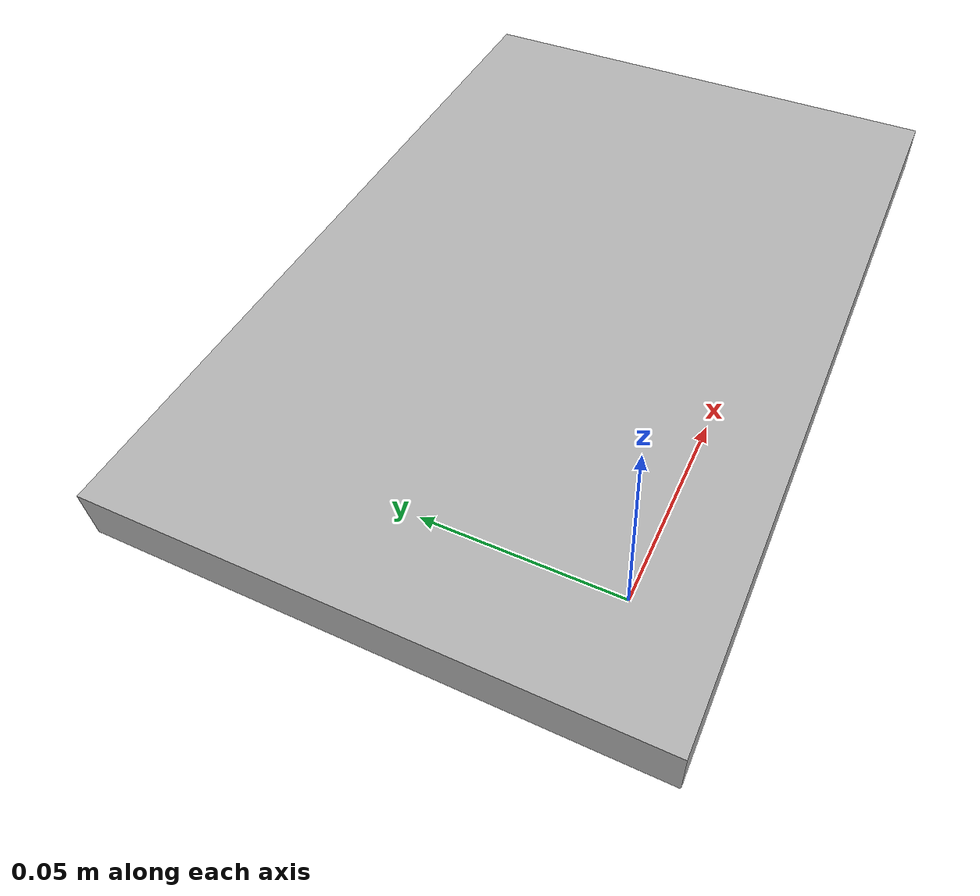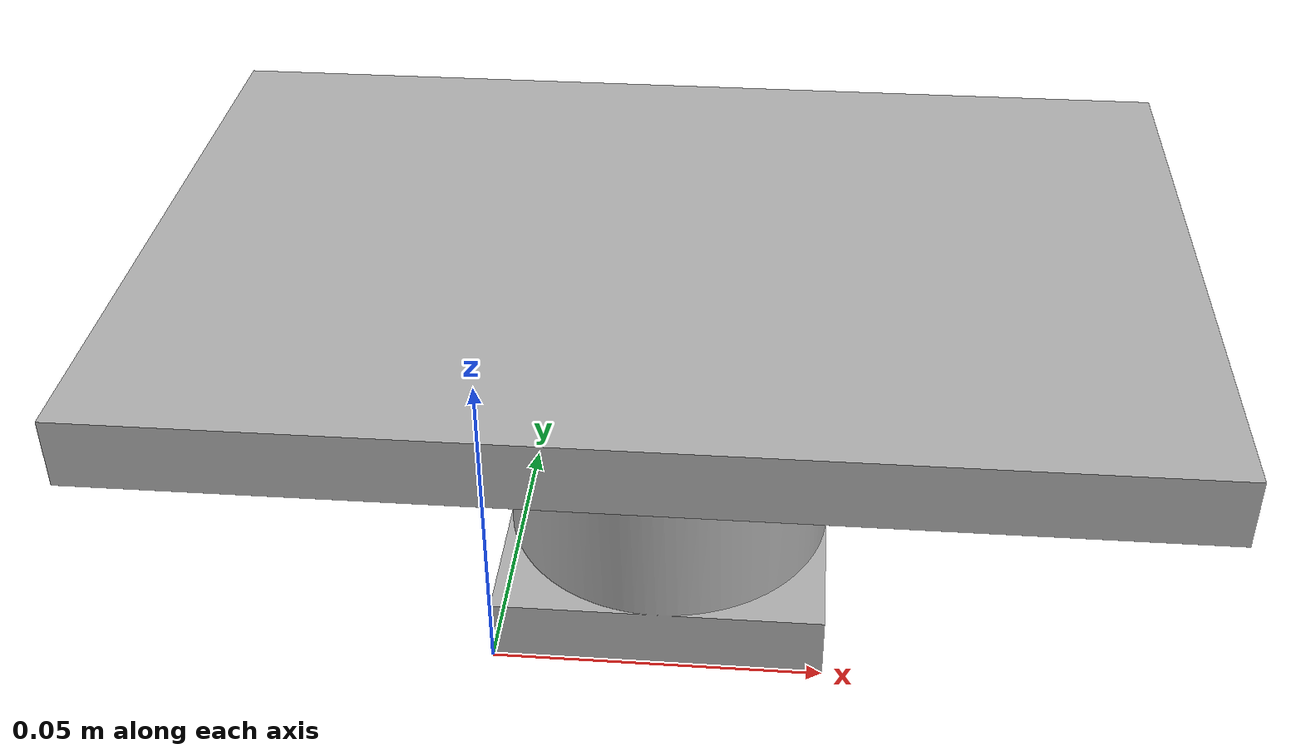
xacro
<?xml version="1.0" ?>
<robot name="assembly" xmlns:xacro="http://www.ros.org/wiki/xacro">

<xacro:include filename="$(find assembly_description)/urdf/materials.xacro" />
<xacro:include filename="$(find assembly_description)/urdf/assembly.trans" />
<xacro:include filename="$(find assembly_description)/urdf/assembly.gazebo" />
<link name="base_link">
  <inertial>
    <origin xyz="0.025000000000000005 0.024999999999999994 0.021121187277477492" rpy="0 0 0"/>
    <mass value="0.6463224175349078"/>
    <inertia ixx="0.000267" iyy="0.000267" izz="0.000256" ixy="0.0" iyz="0.0" ixz="0.0"/>
  </inertial>
  <visual>
    <origin xyz="0 0 0" rpy="0 0 0"/>
    <geometry>
      <mesh filename="package://assembly_description/meshes/base_link.stl" scale="0.001 0.001 0.001"/>
    </geometry>
    <material name="silver"/>
  </visual>
  <collision>
    <origin xyz="0 0 0" rpy="0 0 0"/>
    <geometry>
      <mesh filename="package://assembly_description/meshes/base_link.stl" scale="0.001 0.001 0.001"/>
    </geometry>
  </collision>
</link>

<link name="hoge_link_1">
  <inertial>
    <origin xyz="1.9426821262769067e-13 -1.3877787807814457e-17 0.03252277591602684" rpy="0 0 0"/>
    <mass value="1.3439651407320963"/>
    <inertia ixx="0.001071" iyy="0.002298" izz="0.003208" ixy="-0.0" iyz="-0.0" ixz="0.0"/>
  </inertial>
  <visual>
    <origin xyz="-0.025 -0.025 -0.02" rpy="0 0 0"/>
    <geometry>
      <mesh filename="package://assembly_description/meshes/hoge_link_1.stl" scale="0.001 0.001 0.001"/>
    </geometry>
    <material name="silver"/>
  </visual>
  <collision>
    <origin xyz="-0.025 -0.025 -0.02" rpy="0 0 0"/>
    <geometry>
      <mesh filename="package://assembly_description/meshes/hoge_link_1.stl" scale="0.001 0.001 0.001"/>
    </geometry>
  </collision>
</link>

<joint name="ñ] 1" type="continuous">
  <origin xyz="0.025 0.025 0.02" rpy="0 0 0"/>
  <parent link="base_link"/>
  <child link="hoge_link_1"/>
  <axis xyz="0.0 0.0 1.0"/>
</joint>

</robot>

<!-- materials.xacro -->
<robot name="isaac_sim_test" xmlns:xacro="http://www.ros.org/wiki/xacro" >

<material name="silver">
  <color rgba="0.700 0.700 0.700 1.000"/>
</material>

</robot>

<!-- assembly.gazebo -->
<robot name="assembly" xmlns:xacro="http://www.ros.org/wiki/xacro" >

<xacro:property name="body_color" value="Gazebo/Silver" />

<gazebo>
  <plugin name="control" filename="libgazebo_ros_control.so"/>
</gazebo>
<gazebo reference="base_link">
  <material>${body_color}</material>
  <mu1>0.2</mu1>
  <mu2>0.2</mu2>
  <selfCollide>true</selfCollide>
  <gravity>true</gravity>
</gazebo>

<gazebo reference="hoge_link_1">
  <material>${body_color}</material>
  <mu1>0.2</mu1>
  <mu2>0.2</mu2>
  <selfCollide>true</selfCollide>
</gazebo>

</robot>
